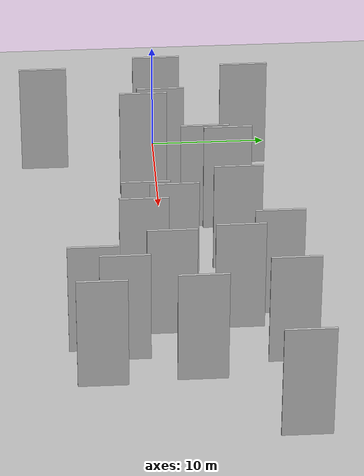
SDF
<?xml version="1.0" encoding="utf-8"?>

<sdf version="1.6">

   <world name="default">

      <gui fullscreen="0">

         <camera name="user_camera">

            <pose>-15 0 4.57585 0 0 0</pose>

            <view_controller>orbit</view_controller>

         </camera>

      </gui>

      <scene>

         <sky>

           <clouds>

             <speed>12</speed>

           </clouds>

         </sky>

         <ambient>0.4 0.4 0.4 1</ambient>

         <background>0.7 0.7 0.7 1</background>

         <shadows>1</shadows>

      </scene>

      <gravity>0 0 -9.8066</gravity>

      <magnetic_field>6e-06 2.3e-05 -4.2e-05</magnetic_field>

      <physics default="0" name="default_physics" type="ode">

         <ode>

            <solver>

               <type>quick</type>

               <iters>10</iters>

               <sor>1.0</sor>

               <use_dynamic_moi_rescaling>0</use_dynamic_moi_rescaling>

            </solver>

            <constraints>

               <cfm>0</cfm>

               <erp>0.2</erp>

               <contact_max_correcting_vel>100</contact_max_correcting_vel>

               <contact_surface_layer>0.001</contact_surface_layer>

            </constraints>

         </ode>

         <max_step_size>0.004</max_step_size>

         <real_time_factor>1</real_time_factor>

         <real_time_update_rate>250</real_time_update_rate>

      </physics>

      <light name="sun" type="directional">

         <cast_shadows>1</cast_shadows>

         <pose>0 0 10 0 0 0</pose>

         <diffuse>0.8 0.8 0.8 1</diffuse>

         <specular>0.2 0.2 0.2 1</specular>

         <attenuation>

            <range>1000</range>

            <constant>0.9</constant>

            <linear>0.01</linear>

            <quadratic>0.001</quadratic>

         </attenuation>

         <direction>-0.5 0.1 -0.9</direction>

      </light>

      <include>

         <name>ground_plane_1</name>

         <uri>model://HANNAS_ground_plane</uri>

         <pose>0 0 0  0 0 0</pose>

      </include>

      <include>

         <name>ground_plane_2</name>

         <uri>model://HANNAS_ground_plane</uri>

         <pose>100 0 0  0 0 0</pose>

      </include>

      <model name="HANNAS_wall_1">

         <static>1</static>

         <pose frame="">7.0667 -9.7520 2.5 0.000000 0.000000 1.570796</pose>

         <link name="link">

            <pose frame="">0 0 5.00 0 0 0</pose>

            <collision name="collision">

               <geometry>

                  <box>

                     <size>4.00 0.2 10.00</size>

                  </box>

               </geometry>

               <max_contacts>10</max_contacts>

               <surface>

                  <contact>

                     <ode/>

                  </contact>

                  <bounce/>

                  <friction>

                     <torsional>

                        <ode/>

                     </torsional>

                     <ode/>

                  </friction>

               </surface>

            </collision>

            <visual name="visual">

               <cast_shadows>0</cast_shadows>

               <geometry>

                  <box>

                     <size>4.00 0.2 10.00</size>

                  </box>

               </geometry>

               <material>

                  <script>

                     <uri>model://HANNAS_wall/materials/scripts</uri>

                     <uri>model://HANNAS_wall/materials/textures</uri>

                     <name>vrc/HANNAS_wall</name>

                  </script>

               </material>

            </visual>

            <self_collide>0</self_collide>

            <enable_wind>0</enable_wind>

            <kinematic>0</kinematic>

         </link>

      </model>

      <model name="HANNAS_wall_2">

         <static>1</static>

         <pose frame="">11.3915 -1.3807 2.5 0.000000 0.000000 1.570796</pose>

         <link name="link">

            <pose frame="">0 0 5.00 0 0 0</pose>

            <collision name="collision">

               <geometry>

                  <box>

                     <size>4.00 0.2 10.00</size>

                  </box>

               </geometry>

               <max_contacts>10</max_contacts>

               <surface>

                  <contact>

                     <ode/>

                  </contact>

                  <bounce/>

                  <friction>

                     <torsional>

                        <ode/>

                     </torsional>

                     <ode/>

                  </friction>

               </surface>

            </collision>

            <visual name="visual">

               <cast_shadows>0</cast_shadows>

               <geometry>

                  <box>

                     <size>4.00 0.2 10.00</size>

                  </box>

               </geometry>

               <material>

                  <script>

                     <uri>model://HANNAS_wall/materials/scripts</uri>

                     <uri>model://HANNAS_wall/materials/textures</uri>

                     <name>vrc/HANNAS_wall</name>

                  </script>

               </material>

            </visual>

            <self_collide>0</self_collide>

            <enable_wind>0</enable_wind>

            <kinematic>0</kinematic>

         </link>

      </model>

      <model name="HANNAS_wall_3">

         <static>1</static>

         <pose frame="">16.6971 3.4613 2.5 0.000000 0.000000 1.570796</pose>

         <link name="link">

            <pose frame="">0 0 5.00 0 0 0</pose>

            <collision name="collision">

               <geometry>

                  <box>

                     <size>4.00 0.2 10.00</size>

                  </box>

               </geometry>

               <max_contacts>10</max_contacts>

               <surface>

                  <contact>

                     <ode/>

                  </contact>

                  <bounce/>

                  <friction>

                     <torsional>

                        <ode/>

                     </torsional>

                     <ode/>

                  </friction>

               </surface>

            </collision>

            <visual name="visual">

               <cast_shadows>0</cast_shadows>

               <geometry>

                  <box>

                     <size>4.00 0.2 10.00</size>

                  </box>

               </geometry>

               <material>

                  <script>

                     <uri>model://HANNAS_wall/materials/scripts</uri>

                     <uri>model://HANNAS_wall/materials/textures</uri>

                     <name>vrc/HANNAS_wall</name>

                  </script>

               </material>

            </visual>

            <self_collide>0</self_collide>

            <enable_wind>0</enable_wind>

            <kinematic>0</kinematic>

         </link>

      </model>

      <model name="HANNAS_wall_4">

         <static>1</static>

         <pose frame="">34.8750 -4.0129 2.5 0.000000 0.000000 1.570796</pose>

         <link name="link">

            <pose frame="">0 0 5.00 0 0 0</pose>

            <collision name="collision">

               <geometry>

                  <box>

                     <size>4.00 0.2 10.00</size>

                  </box>

               </geometry>

               <max_contacts>10</max_contacts>

               <surface>

                  <contact>

                     <ode/>

                  </contact>

                  <bounce/>

                  <friction>

                     <torsional>

                        <ode/>

                     </torsional>

                     <ode/>

                  </friction>

               </surface>

            </collision>

            <visual name="visual">

               <cast_shadows>0</cast_shadows>

               <geometry>

                  <box>

                     <size>4.00 0.2 10.00</size>

                  </box>

               </geometry>

               <material>

                  <script>

                     <uri>model://HANNAS_wall/materials/scripts</uri>

                     <uri>model://HANNAS_wall/materials/textures</uri>

                     <name>vrc/HANNAS_wall</name>

                  </script>

               </material>

            </visual>

            <self_collide>0</self_collide>

            <enable_wind>0</enable_wind>

            <kinematic>0</kinematic>

         </link>

      </model>

      <model name="HANNAS_wall_5">

         <static>1</static>

         <pose frame="">38.1381 -5.9291 2.5 0.000000 0.000000 1.570796</pose>

         <link name="link">

            <pose frame="">0 0 5.00 0 0 0</pose>

            <collision name="collision">

               <geometry>

                  <box>

                     <size>4.00 0.2 10.00</size>

                  </box>

               </geometry>

               <max_contacts>10</max_contacts>

               <surface>

                  <contact>

                     <ode/>

                  </contact>

                  <bounce/>

                  <friction>

                     <torsional>

                        <ode/>

                     </torsional>

                     <ode/>

                  </friction>

               </surface>

            </collision>

            <visual name="visual">

               <cast_shadows>0</cast_shadows>

               <geometry>

                  <box>

                     <size>4.00 0.2 10.00</size>

                  </box>

               </geometry>

               <material>

                  <script>

                     <uri>model://HANNAS_wall/materials/scripts</uri>

                     <uri>model://HANNAS_wall/materials/textures</uri>

                     <name>vrc/HANNAS_wall</name>

                  </script>

               </material>

            </visual>

            <self_collide>0</self_collide>

            <enable_wind>0</enable_wind>

            <kinematic>0</kinematic>

         </link>

      </model>

      <model name="HANNAS_wall_6">

         <static>1</static>

         <pose frame="">29.3881 8.5571 2.5 0.000000 0.000000 1.570796</pose>

         <link name="link">

            <pose frame="">0 0 5.00 0 0 0</pose>

            <collision name="collision">

               <geometry>

                  <box>

                     <size>4.00 0.2 10.00</size>

                  </box>

               </geometry>

               <max_contacts>10</max_contacts>

               <surface>

                  <contact>

                     <ode/>

                  </contact>

                  <bounce/>

                  <friction>

                     <torsional>

                        <ode/>

                     </torsional>

                     <ode/>

                  </friction>

               </surface>

            </collision>

            <visual name="visual">

               <cast_shadows>0</cast_shadows>

               <geometry>

                  <box>

                     <size>4.00 0.2 10.00</size>

                  </box>

               </geometry>

               <material>

                  <script>

                     <uri>model://HANNAS_wall/materials/scripts</uri>

                     <uri>model://HANNAS_wall/materials/textures</uri>

                     <name>vrc/HANNAS_wall</name>

                  </script>

               </material>

            </visual>

            <self_collide>0</self_collide>

            <enable_wind>0</enable_wind>

            <kinematic>0</kinematic>

         </link>

      </model>

      <model name="HANNAS_wall_7">

         <static>1</static>

         <pose frame="">10.6997 0.1087 2.5 0.000000 0.000000 1.570796</pose>

         <link name="link">

            <pose frame="">0 0 5.00 0 0 0</pose>

            <collision name="collision">

               <geometry>

                  <box>

                     <size>4.00 0.2 10.00</size>

                  </box>

               </geometry>

               <max_contacts>10</max_contacts>

               <surface>

                  <contact>

                     <ode/>

                  </contact>

                  <bounce/>

                  <friction>

                     <torsional>

                        <ode/>

                     </torsional>

                     <ode/>

                  </friction>

               </surface>

            </collision>

            <visual name="visual">

               <cast_shadows>0</cast_shadows>

               <geometry>

                  <box>

                     <size>4.00 0.2 10.00</size>

                  </box>

               </geometry>

               <material>

                  <script>

                     <uri>model://HANNAS_wall/materials/scripts</uri>

                     <uri>model://HANNAS_wall/materials/textures</uri>

                     <name>vrc/HANNAS_wall</name>

                  </script>

               </material>

            </visual>

            <self_collide>0</self_collide>

            <enable_wind>0</enable_wind>

            <kinematic>0</kinematic>

         </link>

      </model>

      <model name="HANNAS_wall_8">

         <static>1</static>

         <pose frame="">33.5951 -6.4603 2.5 0.000000 0.000000 1.570796</pose>

         <link name="link">

            <pose frame="">0 0 5.00 0 0 0</pose>

            <collision name="collision">

               <geometry>

                  <box>

                     <size>4.00 0.2 10.00</size>

                  </box>

               </geometry>

               <max_contacts>10</max_contacts>

               <surface>

                  <contact>

                     <ode/>

                  </contact>

                  <bounce/>

                  <friction>

                     <torsional>

                        <ode/>

                     </torsional>

                     <ode/>

                  </friction>

               </surface>

            </collision>

            <visual name="visual">

               <cast_shadows>0</cast_shadows>

               <geometry>

                  <box>

                     <size>4.00 0.2 10.00</size>

                  </box>

               </geometry>

               <material>

                  <script>

                     <uri>model://HANNAS_wall/materials/scripts</uri>

                     <uri>model://HANNAS_wall/materials/textures</uri>

                     <name>vrc/HANNAS_wall</name>

                  </script>

               </material>

            </visual>

            <self_collide>0</self_collide>

            <enable_wind>0</enable_wind>

            <kinematic>0</kinematic>

         </link>

      </model>

      <model name="HANNAS_wall_9">

         <static>1</static>

         <pose frame="">37.7391 1.8936 2.5 0.000000 0.000000 1.570796</pose>

         <link name="link">

            <pose frame="">0 0 5.00 0 0 0</pose>

            <collision name="collision">

               <geometry>

                  <box>

                     <size>4.00 0.2 10.00</size>

                  </box>

               </geometry>

               <max_contacts>10</max_contacts>

               <surface>

                  <contact>

                     <ode/>

                  </contact>

                  <bounce/>

                  <friction>

                     <torsional>

                        <ode/>

                     </torsional>

                     <ode/>

                  </friction>

               </surface>

            </collision>

            <visual name="visual">

               <cast_shadows>0</cast_shadows>

               <geometry>

                  <box>

                     <size>4.00 0.2 10.00</size>

                  </box>

               </geometry>

               <material>

                  <script>

                     <uri>model://HANNAS_wall/materials/scripts</uri>

                     <uri>model://HANNAS_wall/materials/textures</uri>

                     <name>vrc/HANNAS_wall</name>

                  </script>

               </material>

            </visual>

            <self_collide>0</self_collide>

            <enable_wind>0</enable_wind>

            <kinematic>0</kinematic>

         </link>

      </model>

      <model name="HANNAS_wall_10">

         <static>1</static>

         <pose frame="">45.0738 9.3199 2.5 0.000000 0.000000 1.570796</pose>

         <link name="link">

            <pose frame="">0 0 5.00 0 0 0</pose>

            <collision name="collision">

               <geometry>

                  <box>

                     <size>4.00 0.2 10.00</size>

                  </box>

               </geometry>

               <max_contacts>10</max_contacts>

               <surface>

                  <contact>

                     <ode/>

                  </contact>

                  <bounce/>

                  <friction>

                     <torsional>

                        <ode/>

                     </torsional>

                     <ode/>

                  </friction>

               </surface>

            </collision>

            <visual name="visual">

               <cast_shadows>0</cast_shadows>

               <geometry>

                  <box>

                     <size>4.00 0.2 10.00</size>

                  </box>

               </geometry>

               <material>

                  <script>

                     <uri>model://HANNAS_wall/materials/scripts</uri>

                     <uri>model://HANNAS_wall/materials/textures</uri>

                     <name>vrc/HANNAS_wall</name>

                  </script>

               </material>

            </visual>

            <self_collide>0</self_collide>

            <enable_wind>0</enable_wind>

            <kinematic>0</kinematic>

         </link>

      </model>

      <model name="HANNAS_wall_11">

         <static>1</static>

         <pose frame="">35.8455 9.1983 2.5 0.000000 0.000000 1.570796</pose>

         <link name="link">

            <pose frame="">0 0 5.00 0 0 0</pose>

            <collision name="collision">

               <geometry>

                  <box>

                     <size>4.00 0.2 10.00</size>

                  </box>

               </geometry>

               <max_contacts>10</max_contacts>

               <surface>

                  <contact>

                     <ode/>

                  </contact>

                  <bounce/>

                  <friction>

                     <torsional>

                        <ode/>

                     </torsional>

                     <ode/>

                  </friction>

               </surface>

            </collision>

            <visual name="visual">

               <cast_shadows>0</cast_shadows>

               <geometry>

                  <box>

                     <size>4.00 0.2 10.00</size>

                  </box>

               </geometry>

               <material>

                  <script>

                     <uri>model://HANNAS_wall/materials/scripts</uri>

                     <uri>model://HANNAS_wall/materials/textures</uri>

                     <name>vrc/HANNAS_wall</name>

                  </script>

               </material>

            </visual>

            <self_collide>0</self_collide>

            <enable_wind>0</enable_wind>

            <kinematic>0</kinematic>

         </link>

      </model>

      <model name="HANNAS_wall_12">

         <static>1</static>

         <pose frame="">17.0254 5.3551 2.5 0.000000 0.000000 1.570796</pose>

         <link name="link">

            <pose frame="">0 0 5.00 0 0 0</pose>

            <collision name="collision">

               <geometry>

                  <box>

                     <size>4.00 0.2 10.00</size>

                  </box>

               </geometry>

               <max_contacts>10</max_contacts>

               <surface>

                  <contact>

                     <ode/>

                  </contact>

                  <bounce/>

                  <friction>

                     <torsional>

                        <ode/>

                     </torsional>

                     <ode/>

                  </friction>

               </surface>

            </collision>

            <visual name="visual">

               <cast_shadows>0</cast_shadows>

               <geometry>

                  <box>

                     <size>4.00 0.2 10.00</size>

                  </box>

               </geometry>

               <material>

                  <script>

                     <uri>model://HANNAS_wall/materials/scripts</uri>

                     <uri>model://HANNAS_wall/materials/textures</uri>

                     <name>vrc/HANNAS_wall</name>

                  </script>

               </material>

            </visual>

            <self_collide>0</self_collide>

            <enable_wind>0</enable_wind>

            <kinematic>0</kinematic>

         </link>

      </model>

      <model name="HANNAS_wall_13">

         <static>1</static>

         <pose frame="">22.9172 5.7592 2.5 0.000000 0.000000 1.570796</pose>

         <link name="link">

            <pose frame="">0 0 5.00 0 0 0</pose>

            <collision name="collision">

               <geometry>

                  <box>

                     <size>4.00 0.2 10.00</size>

                  </box>

               </geometry>

               <max_contacts>10</max_contacts>

               <surface>

                  <contact>

                     <ode/>

                  </contact>

                  <bounce/>

                  <friction>

                     <torsional>

                        <ode/>

                     </torsional>

                     <ode/>

                  </friction>

               </surface>

            </collision>

            <visual name="visual">

               <cast_shadows>0</cast_shadows>

               <geometry>

                  <box>

                     <size>4.00 0.2 10.00</size>

                  </box>

               </geometry>

               <material>

                  <script>

                     <uri>model://HANNAS_wall/materials/scripts</uri>

                     <uri>model://HANNAS_wall/materials/textures</uri>

                     <name>vrc/HANNAS_wall</name>

                  </script>

               </material>

            </visual>

            <self_collide>0</self_collide>

            <enable_wind>0</enable_wind>

            <kinematic>0</kinematic>

         </link>

      </model>

      <model name="HANNAS_wall_14">

         <static>1</static>

         <pose frame="">27.1337 -2.1222 2.5 0.000000 0.000000 1.570796</pose>

         <link name="link">

            <pose frame="">0 0 5.00 0 0 0</pose>

            <collision name="collision">

               <geometry>

                  <box>

                     <size>4.00 0.2 10.00</size>

                  </box>

               </geometry>

               <max_contacts>10</max_contacts>

               <surface>

                  <contact>

                     <ode/>

                  </contact>

                  <bounce/>

                  <friction>

                     <torsional>

                        <ode/>

                     </torsional>

                     <ode/>

                  </friction>

               </surface>

            </collision>

            <visual name="visual">

               <cast_shadows>0</cast_shadows>

               <geometry>

                  <box>

                     <size>4.00 0.2 10.00</size>

                  </box>

               </geometry>

               <material>

                  <script>

                     <uri>model://HANNAS_wall/materials/scripts</uri>

                     <uri>model://HANNAS_wall/materials/textures</uri>

                     <name>vrc/HANNAS_wall</name>

                  </script>

               </material>

            </visual>

            <self_collide>0</self_collide>

            <enable_wind>0</enable_wind>

            <kinematic>0</kinematic>

         </link>

      </model>

      <model name="HANNAS_wall_15">

         <static>1</static>

         <pose frame="">5.5983 0.0092 2.5 0.000000 0.000000 1.570796</pose>

         <link name="link">

            <pose frame="">0 0 5.00 0 0 0</pose>

            <collision name="collision">

               <geometry>

                  <box>

                     <size>4.00 0.2 10.00</size>

                  </box>

               </geometry>

               <max_contacts>10</max_contacts>

               <surface>

                  <contact>

                     <ode/>

                  </contact>

                  <bounce/>

                  <friction>

                     <torsional>

                        <ode/>

                     </torsional>

                     <ode/>

                  </friction>

               </surface>

            </collision>

            <visual name="visual">

               <cast_shadows>0</cast_shadows>

               <geometry>

                  <box>

                     <size>4.00 0.2 10.00</size>

                  </box>

               </geometry>

               <material>

                  <script>

                     <uri>model://HANNAS_wall/materials/scripts</uri>

                     <uri>model://HANNAS_wall/materials/textures</uri>

                     <name>vrc/HANNAS_wall</name>

                  </script>

               </material>

            </visual>

            <self_collide>0</self_collide>

            <enable_wind>0</enable_wind>

            <kinematic>0</kinematic>

         </link>

      </model>

      <model name="HANNAS_wall_16">

         <static>1</static>

         <pose frame="">25.1741 0.4213 2.5 0.000000 0.000000 1.570796</pose>

         <link name="link">

            <pose frame="">0 0 5.00 0 0 0</pose>

            <collision name="collision">

               <geometry>

                  <box>

                     <size>4.00 0.2 10.00</size>

                  </box>

               </geometry>

               <max_contacts>10</max_contacts>

               <surface>

                  <contact>

                     <ode/>

                  </contact>

                  <bounce/>

                  <friction>

                     <torsional>

                        <ode/>

                     </torsional>

                     <ode/>

                  </friction>

               </surface>

            </collision>

            <visual name="visual">

               <cast_shadows>0</cast_shadows>

               <geometry>

                  <box>

                     <size>4.00 0.2 10.00</size>

                  </box>

               </geometry>

               <material>

                  <script>

                     <uri>model://HANNAS_wall/materials/scripts</uri>

                     <uri>model://HANNAS_wall/materials/textures</uri>

                     <name>vrc/HANNAS_wall</name>

                  </script>

               </material>

            </visual>

            <self_collide>0</self_collide>

            <enable_wind>0</enable_wind>

            <kinematic>0</kinematic>

         </link>

      </model>

      <model name="HANNAS_wall_17">

         <static>1</static>

         <pose frame="">24.7703 -1.8641 2.5 0.000000 0.000000 1.570796</pose>

         <link name="link">

            <pose frame="">0 0 5.00 0 0 0</pose>

            <collision name="collision">

               <geometry>

                  <box>

                     <size>4.00 0.2 10.00</size>

                  </box>

               </geometry>

               <max_contacts>10</max_contacts>

               <surface>

                  <contact>

                     <ode/>

                  </contact>

                  <bounce/>

                  <friction>

                     <torsional>

                        <ode/>

                     </torsional>

                     <ode/>

                  </friction>

               </surface>

            </collision>

            <visual name="visual">

               <cast_shadows>0</cast_shadows>

               <geometry>

                  <box>

                     <size>4.00 0.2 10.00</size>

                  </box>

               </geometry>

               <material>

                  <script>

                     <uri>model://HANNAS_wall/materials/scripts</uri>

                     <uri>model://HANNAS_wall/materials/textures</uri>

                     <name>vrc/HANNAS_wall</name>

                  </script>

               </material>

            </visual>

            <self_collide>0</self_collide>

            <enable_wind>0</enable_wind>

            <kinematic>0</kinematic>

         </link>

      </model>

      <model name="HANNAS_wall_18">

         <static>1</static>

         <pose frame="">31.1639 5.3011 2.5 0.000000 0.000000 1.570796</pose>

         <link name="link">

            <pose frame="">0 0 5.00 0 0 0</pose>

            <collision name="collision">

               <geometry>

                  <box>

                     <size>4.00 0.2 10.00</size>

                  </box>

               </geometry>

               <max_contacts>10</max_contacts>

               <surface>

                  <contact>

                     <ode/>

                  </contact>

                  <bounce/>

                  <friction>

                     <torsional>

                        <ode/>

                     </torsional>

                     <ode/>

                  </friction>

               </surface>

            </collision>

            <visual name="visual">

               <cast_shadows>0</cast_shadows>

               <geometry>

                  <box>

                     <size>4.00 0.2 10.00</size>

                  </box>

               </geometry>

               <material>

                  <script>

                     <uri>model://HANNAS_wall/materials/scripts</uri>

                     <uri>model://HANNAS_wall/materials/textures</uri>

                     <name>vrc/HANNAS_wall</name>

                  </script>

               </material>

            </visual>

            <self_collide>0</self_collide>

            <enable_wind>0</enable_wind>

            <kinematic>0</kinematic>

         </link>

      </model>

      <model name="HANNAS_wall_19">

         <static>1</static>

         <pose frame="">31.6391 -0.1529 2.5 0.000000 0.000000 1.570796</pose>

         <link name="link">

            <pose frame="">0 0 5.00 0 0 0</pose>

            <collision name="collision">

               <geometry>

                  <box>

                     <size>4.00 0.2 10.00</size>

                  </box>

               </geometry>

               <max_contacts>10</max_contacts>

               <surface>

                  <contact>

                     <ode/>

                  </contact>

                  <bounce/>

                  <friction>

                     <torsional>

                        <ode/>

                     </torsional>

                     <ode/>

                  </friction>

               </surface>

            </collision>

            <visual name="visual">

               <cast_shadows>0</cast_shadows>

               <geometry>

                  <box>

                     <size>4.00 0.2 10.00</size>

                  </box>

               </geometry>

               <material>

                  <script>

                     <uri>model://HANNAS_wall/materials/scripts</uri>

                     <uri>model://HANNAS_wall/materials/textures</uri>

                     <name>vrc/HANNAS_wall</name>

                  </script>

               </material>

            </visual>

            <self_collide>0</self_collide>

            <enable_wind>0</enable_wind>

            <kinematic>0</kinematic>

         </link>

      </model>

      <model name="HANNAS_wall_20">

         <static>1</static>

         <pose frame="">7.1331 7.4399 2.5 0.000000 0.000000 1.570796</pose>

         <link name="link">

            <pose frame="">0 0 5.00 0 0 0</pose>

            <collision name="collision">

               <geometry>

                  <box>

                     <size>4.00 0.2 10.00</size>

                  </box>

               </geometry>

               <max_contacts>10</max_contacts>

               <surface>

                  <contact>

                     <ode/>

                  </contact>

                  <bounce/>

                  <friction>

                     <torsional>

                        <ode/>

                     </torsional>

                     <ode/>

                  </friction>

               </surface>

            </collision>

            <visual name="visual">

               <cast_shadows>0</cast_shadows>

               <geometry>

                  <box>

                     <size>4.00 0.2 10.00</size>

                  </box>

               </geometry>

               <material>

                  <script>

                     <uri>model://HANNAS_wall/materials/scripts</uri>

                     <uri>model://HANNAS_wall/materials/textures</uri>

                     <name>vrc/HANNAS_wall</name>

                  </script>

               </material>

            </visual>

            <self_collide>0</self_collide>

            <enable_wind>0</enable_wind>

            <kinematic>0</kinematic>

         </link>

      </model>

   </world>

</sdf>

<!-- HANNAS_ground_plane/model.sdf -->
<sdf version="1.4">
<model name="HANNAS_ground_plane">
  <static>true</static>
    <link name="link">
      <collision name="collision">
        <geometry>
          <plane>
            <normal>0 0 1</normal>
            <size>1000 1000</size>
          </plane>
        </geometry>
        <surface>
          <friction>
            <ode>
              <mu>100</mu>
              <mu2>50</mu2>
            </ode>
          </friction>
        </surface>
      </collision>
      <visual name="visual">
        <cast_shadows>false</cast_shadows>
        <geometry>
          <plane>
            <normal>0 0 1</normal>
            <size>1000 1000</size>
          </plane>
        </geometry>
        <material>
          <script>
            <uri>model://HANNAS_ground_plane/materials/scripts/HANNAS_ground_plane.material</uri>
	    <uri>model://HANNAS_ground_plane/materials/textures</uri>
            <name>HANNASGroundPlane/Image</name>
          </script>
        </material>
      </visual>
    </link>
  </model>
</sdf>
